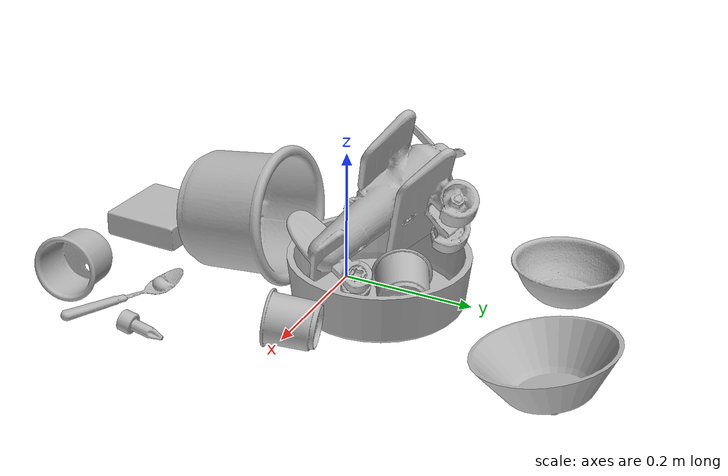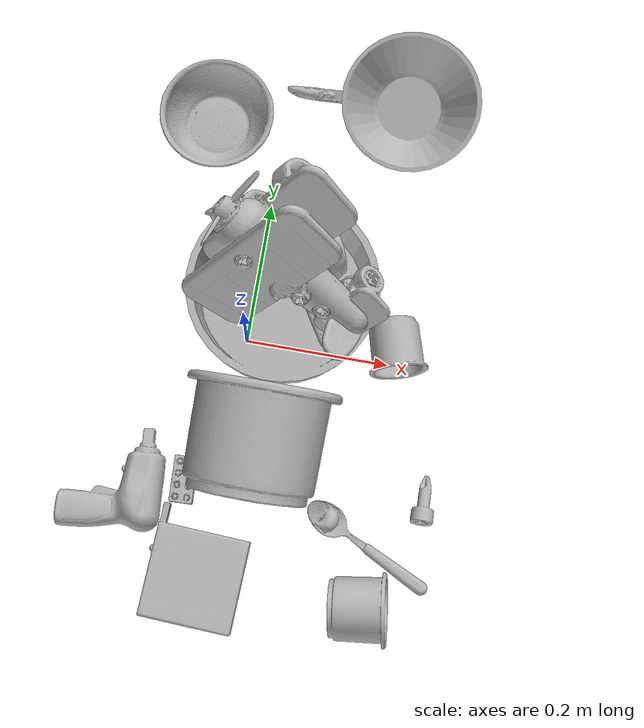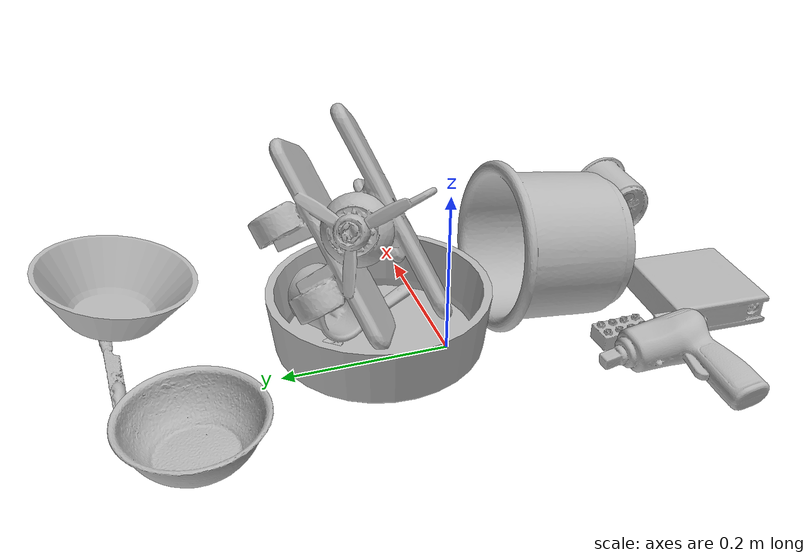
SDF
<sdf version="1.4">
  <world name="default">
    <light name="light1" type="point">
      <pose>0 0 1 0 0 0</pose>
      <diffuse>3 3 3 1</diffuse>
      <specular>3 3 3 1</specular>
    </light>
    <light name="light2" type="point">
      <pose>0 0.5 2 0 0 0</pose>
      <diffuse>1 1 1 1</diffuse>
      <specular>1 1 1 1</specular>
    </light>
    <light name="light3" type="point">
      <pose>0 0.5 2 0 0 0</pose>
      <diffuse>3 3 3 1</diffuse>
      <specular>3 3 3 1</specular>
    </light>
    <scene>
      <ambient>0.7 0.7 0.7</ambient>
    </scene>
    <model name="plate1">
      <link name="link_plate1">
        <collision name="default">
          <geometry>
            <mesh>
              <uri>model://pan_tefal/collision_meshes/collision.obj</uri>
              <scale>1.0 1.0 1.0</scale>
            </mesh>
          </geometry>
          <surface>
            <friction>
              <ode>
                <mu>0.5</mu>
                <mu2>0.5</mu2>
              </ode>
            </friction>
          <contact>
        <ode>
            <max_vel>0</max_vel>
            <min_depth>0.0001</min_depth>
            <kp>1e8</kp>
        </ode>
    </contact></surface>
        </collision>
        <visual name="default">
          <geometry>
            <mesh>
              <uri>model://pan_tefal/visual_meshes/visual.dae</uri>
              <scale>1.0 1.0 1.0</scale>
            </mesh>
          </geometry>
        </visual>
        <inertial>
          <mass>1.2414644956588745</mass>
          <pose>-0.0001800298341549933 3.278589065303095e-05 -0.00851493515074253 0.0008190165640447202 -0.0003301348973125405 -0.33185319573483557</pose>
          <inertia>
            <ixx>0.00856977</ixx>
            <iyy>0.008625018</iyy>
            <izz>0.015775295</izz>
            <ixy>0</ixy>
            <ixz>0</ixz>
            <iyz>0</iyz>
          </inertia>
        </inertial>
      </link>
      <pose>0.03825554996728897 0.07155869901180267 0.038050100207328796 -6.205489685035115e-06 1.3526633974662002e-06 0.6756754665961403</pose>
    </model>
    <model name="cup1">
      <link name="link_cup1">
        <collision name="default">
          <geometry>
            <mesh>
              <uri>model://j_cups/collision_meshes/collision.obj</uri>
              <scale>2.0 2.0 2.0</scale>
            </mesh>
          </geometry>
          <surface>
            <friction>
              <ode>
                <mu>0.5</mu>
                <mu2>0.5</mu2>
              </ode>
            </friction>
          <contact>
        <ode>
            <max_vel>0</max_vel>
            <min_depth>0.0001</min_depth>
            <kp>1e8</kp>
        </ode>
    </contact></surface>
        </collision>
        <visual name="default">
          <geometry>
            <mesh>
              <uri>model://j_cups/visual_meshes/visual.dae</uri>
              <scale>2.0 2.0 2.0</scale>
            </mesh>
          </geometry>
        </visual>
        <inertial>
          <mass>0.42814481258392334</mass>
          <pose>0.0012329709716141224 0.0010797895956784487 -0.002695801667869091 0.030303634199985552 0.037580068488308346 0.43868666904956827</pose>
          <inertia>
            <ixx>0.0025146077</ixx>
            <iyy>0.0025407567</iyy>
            <izz>0.0028988216</izz>
            <ixy>0</ixy>
            <ixz>0</ixz>
            <iyz>0</iyz>
          </inertia>
        </inertial>
      </link>
      <pose>0.039916735142469406 -0.14181670546531677 0.09444397687911987 1.4332651507526406 0.48449081214815287 3.0723422790061945</pose>
    </model>
    <model name="silverware1">
      <link name="link_silverware1">
        <collision name="default">
          <geometry>
            <mesh>
              <uri>model://fork/collision_meshes/collision.obj</uri>
              <scale>1.0 1.0 1.0</scale>
            </mesh>
          </geometry>
          <surface>
            <friction>
              <ode>
                <mu>0.5</mu>
                <mu2>0.5</mu2>
              </ode>
            </friction>
          <contact>
        <ode>
            <max_vel>0</max_vel>
            <min_depth>0.0001</min_depth>
            <kp>1e8</kp>
        </ode>
    </contact></surface>
        </collision>
        <visual name="default">
          <geometry>
            <mesh>
              <uri>model://fork/visual_meshes/visual.dae</uri>
              <scale>1.0 1.0 1.0</scale>
            </mesh>
          </geometry>
        </visual>
        <inertial>
          <mass>0.013809523545205593</mass>
          <pose>-0.029570044949650764 0.0004658822435885668 0.00032188615296036005 -0.013551743215227608 -0.010977837587661193 0.014453899243146438</pose>
          <inertia>
            <ixx>4.84102e-07</ixx>
            <iyy>3.6052697e-05</iyy>
            <izz>3.6269223e-05</izz>
            <ixy>0</ixy>
            <ixz>0</ixz>
            <iyz>0</iyz>
          </inertia>
        </inertial>
      </link>
      <pose>0.060082174837589264 0.0920267254114151 0.01241295225918293 0.018689220334534417 0.04483831284180789 2.1495347574955392</pose>
    </model>
    <model name="silverware2">
      <link name="link_silverware2">
        <collision name="default">
          <geometry>
            <mesh>
              <uri>model://knife/collision_meshes/collision.obj</uri>
              <scale>1.0 1.0 1.0</scale>
            </mesh>
          </geometry>
          <surface>
            <friction>
              <ode>
                <mu>0.5</mu>
                <mu2>0.5</mu2>
              </ode>
            </friction>
          <contact>
        <ode>
            <max_vel>0</max_vel>
            <min_depth>0.0001</min_depth>
            <kp>1e8</kp>
        </ode>
    </contact></surface>
        </collision>
        <visual name="default">
          <geometry>
            <mesh>
              <uri>model://knife/visual_meshes/visual.dae</uri>
              <scale>1.0 1.0 1.0</scale>
            </mesh>
          </geometry>
        </visual>
        <inertial>
          <mass>0.021972408518195152</mass>
          <pose>-0.023785250261425972 0.0015275123296305537 5.0620161346159875e-05 0.07305788583029697 0.01724841890740089 -0.007409824444555058</pose>
          <inertia>
            <ixx>6.2366604e-07</ixx>
            <iyy>8.441444e-05</iyy>
            <izz>8.46153e-05</izz>
            <ixy>0</ixy>
            <ixz>0</ixz>
            <iyz>0</iyz>
          </inertia>
        </inertial>
      </link>
      <pose>0.09943175315856934 0.3821915090084076 0.006071458570659161 2.8120634344927087 0.02100034667318305 -3.0854309104925433</pose>
    </model>
    <model name="silverware3">
      <link name="link_silverware3">
        <collision name="default">
          <geometry>
            <mesh>
              <uri>model://spoon/collision_meshes/collision.obj</uri>
              <scale>1.0 1.0 1.0</scale>
            </mesh>
          </geometry>
          <surface>
            <friction>
              <ode>
                <mu>0.5</mu>
                <mu2>0.5</mu2>
              </ode>
            </friction>
          <contact>
        <ode>
            <max_vel>0</max_vel>
            <min_depth>0.0001</min_depth>
            <kp>1e8</kp>
        </ode>
    </contact></surface>
        </collision>
        <visual name="default">
          <geometry>
            <mesh>
              <uri>model://spoon/visual_meshes/visual.dae</uri>
              <scale>1.0 1.0 1.0</scale>
            </mesh>
          </geometry>
        </visual>
        <inertial>
          <mass>0.026694269850850105</mass>
          <pose>-0.005526325199753046 -0.0016034168656915426 -0.0007271653739735484 0.035216710718480135 -0.03906584501417282 0.00615060951780049</pose>
          <inertia>
            <ixx>1.484779e-06</ixx>
            <iyy>0.000101570804</iyy>
            <izz>0.000102303035</izz>
            <ixy>0</ixy>
            <ixz>0</ixz>
            <iyz>0</iyz>
          </inertia>
        </inertial>
      </link>
      <pose>0.20929908752441406 -0.25501054525375366 0.008385262452065945 0.00672897639221411 0.026893009700383684 2.67513254902952</pose>
    </model>
    <model name="cup3">
      <link name="link_cup3">
        <collision name="default">
          <geometry>
            <mesh>
              <uri>model://f_cups/collision_meshes/collision.obj</uri>
              <scale>1.0 1.0 1.0</scale>
            </mesh>
          </geometry>
          <surface>
            <friction>
              <ode>
                <mu>0.5</mu>
                <mu2>0.5</mu2>
              </ode>
            </friction>
          <contact>
        <ode>
            <max_vel>0</max_vel>
            <min_depth>0.0001</min_depth>
            <kp>1e8</kp>
        </ode>
    </contact></surface>
        </collision>
        <visual name="default">
          <geometry>
            <mesh>
              <uri>model://f_cups/visual_meshes/visual.dae</uri>
              <scale>1.0 1.0 1.0</scale>
            </mesh>
          </geometry>
        </visual>
        <inertial>
          <mass>0.09255705773830414</mass>
          <pose>-0.0031714672222733498 -0.0006240062648430467 -0.0036555363330990076 0.7862294428046025 -0.26079256257201844 -0.18237393521905715</pose>
          <inertia>
            <ixx>8.700612e-05</ixx>
            <iyy>9.127041e-05</iyy>
            <izz>9.501506e-05</izz>
            <ixy>0</ixy>
            <ixz>0</ixz>
            <iyz>0</iyz>
          </inertia>
        </inertial>
      </link>
      <pose>0.2051669806241989 0.02147737890481949 0.03713995963335037 1.4687374775255193 0.01676940052783826 0.259406191709178</pose>
    </model>
    <model name="cup4">
      <link name="link_cup4">
        <collision name="default">
          <geometry>
            <mesh>
              <uri>model://g_cups/collision_meshes/collision.obj</uri>
              <scale>1.0 1.0 1.0</scale>
            </mesh>
          </geometry>
          <surface>
            <friction>
              <ode>
                <mu>0.5</mu>
                <mu2>0.5</mu2>
              </ode>
            </friction>
          <contact>
        <ode>
            <max_vel>0</max_vel>
            <min_depth>0.0001</min_depth>
            <kp>1e8</kp>
        </ode>
    </contact></surface>
        </collision>
        <visual name="default">
          <geometry>
            <mesh>
              <uri>model://g_cups/visual_meshes/visual.dae</uri>
              <scale>1.0 1.0 1.0</scale>
            </mesh>
          </geometry>
        </visual>
        <inertial>
          <mass>0.09045539051294327</mass>
          <pose>-0.0007946272380650043 -4.206356970826164e-05 -0.0021329366136342287 -0.21382427470227655 -0.31410603394020525 0.31120189460551634</pose>
          <inertia>
            <ixx>0.000105581705</ixx>
            <iyy>0.000105222556</iyy>
            <izz>0.000109364446</izz>
            <ixy>0</ixy>
            <ixz>0</ixz>
            <iyz>0</iyz>
          </inertia>
        </inertial>
      </link>
      <pose>0.07247614860534668 0.12419839203357697 0.04839332774281502 -1.2148986201597187 1.1676845011251942 2.3728611568753224</pose>
    </model>
    <model name="cup5">
      <link name="link_cup5">
        <collision name="default">
          <geometry>
            <mesh>
              <uri>model://i_cups/collision_meshes/collision.obj</uri>
              <scale>1.0 1.0 1.0</scale>
            </mesh>
          </geometry>
          <surface>
            <friction>
              <ode>
                <mu>0.5</mu>
                <mu2>0.5</mu2>
              </ode>
            </friction>
          <contact>
        <ode>
            <max_vel>0</max_vel>
            <min_depth>0.0001</min_depth>
            <kp>1e8</kp>
        </ode>
    </contact></surface>
        </collision>
        <visual name="default">
          <geometry>
            <mesh>
              <uri>model://i_cups/visual_meshes/visual.dae</uri>
              <scale>1.0 1.0 1.0</scale>
            </mesh>
          </geometry>
        </visual>
        <inertial>
          <mass>0.0815454050898552</mass>
          <pose>0.0001123997790273279 0.00016797320859041065 -0.0008579009445384145 -0.02898318353055437 -0.03987301779891007 -0.3459082462056558</pose>
          <inertia>
            <ixx>0.0001129008</ixx>
            <iyy>0.000113895556</iyy>
            <izz>0.00012618494</izz>
            <ixy>0</ixy>
            <ixz>0</ixz>
            <iyz>0</iyz>
          </inertia>
        </inertial>
      </link>
      <pose>0.20893360674381256 -0.3341276943683624 0.04480120912194252 -0.7353264348635475 1.394229436297043 -0.6058401417742497</pose>
    </model>
    <model name="bowl1">
      <link name="link_bowl1">
        <collision name="default">
          <geometry>
            <mesh>
              <uri>model://bowl/collision_meshes/collision.obj</uri>
              <scale>1.0 1.0 1.0</scale>
            </mesh>
          </geometry>
          <surface>
            <friction>
              <ode>
                <mu>0.5</mu>
                <mu2>0.5</mu2>
              </ode>
            </friction>
          <contact>
        <ode>
            <max_vel>0</max_vel>
            <min_depth>0.0001</min_depth>
            <kp>1e8</kp>
        </ode>
    </contact></surface>
        </collision>
        <visual name="default">
          <geometry>
            <mesh>
              <uri>model://bowl/visual_meshes/visual.dae</uri>
              <scale>1.0 1.0 1.0</scale>
            </mesh>
          </geometry>
        </visual>
        <inertial>
          <mass>0.1349102407693863</mass>
          <pose>0.00020445192058105022 -0.0010302069131284952 -0.0008042648551054299 -0.01576408127006171 0.01454679335072616 0.7140405111038781</pose>
          <inertia>
            <ixx>0.00030989948</ixx>
            <iyy>0.00030297515</iyy>
            <izz>0.0005213576</izz>
            <ixy>0</ixy>
            <ixz>0</ixz>
            <iyz>0</iyz>
          </inertia>
        </inertial>
      </link>
      <pose>-0.09771979600191116 0.3068356215953827 0.02778000757098198 2.321976235019508e-08 -1.0133615432334253e-08 2.0806030906536024</pose>
    </model>
    <model name="bowl2">
      <link name="link_bowl2">
        <collision name="default">
          <geometry>
            <mesh>
              <uri>model://bowl_a/collision_meshes/collision.obj</uri>
              <scale>1.0 1.0 1.0</scale>
            </mesh>
          </geometry>
          <surface>
            <friction>
              <ode>
                <mu>0.5</mu>
                <mu2>0.5</mu2>
              </ode>
            </friction>
          <contact>
        <ode>
            <max_vel>0</max_vel>
            <min_depth>0.0001</min_depth>
            <kp>1e8</kp>
        </ode>
    </contact></surface>
        </collision>
        <visual name="default">
          <geometry>
            <mesh>
              <uri>model://bowl_a/visual_meshes/visual.dae</uri>
              <scale>1.0 1.0 1.0</scale>
            </mesh>
          </geometry>
        </visual>
        <inertial>
          <mass>0.4816342294216156</mass>
          <pose>0.000278677063761279 4.73155923828017e-05 -0.0013765296898782253 -0.0009805427744981278 -0.0010938171301827632 -0.19123023792191385</pose>
          <inertia>
            <ixx>0.0013712347</ixx>
            <iyy>0.0013796532</iyy>
            <izz>0.0024387941</izz>
            <ixy>0</ixy>
            <ixz>0</ixz>
            <iyz>0</iyz>
          </inertia>
        </inertial>
      </link>
      <pose>0.17093373835086823 0.36925825476646423 0.041486386209726334 0.20824695771640958 0.04151907523466804 -0.2891644209258299</pose>
    </model>
    <model name="toy1">
      <link name="link_toy1">
        <collision name="default">
          <geometry>
            <mesh>
              <uri>model://a_toy_airplane/collision_meshes/collision.obj</uri>
              <scale>1.0 1.0 1.0</scale>
            </mesh>
          </geometry>
          <surface>
            <friction>
              <ode>
                <mu>0.5</mu>
                <mu2>0.5</mu2>
              </ode>
            </friction>
          <contact>
        <ode>
            <max_vel>0</max_vel>
            <min_depth>0.0001</min_depth>
            <kp>1e8</kp>
        </ode>
    </contact></surface>
        </collision>
        <visual name="default">
          <geometry>
            <mesh>
              <uri>model://a_toy_airplane/visual_meshes/visual.dae</uri>
              <scale>1.0 1.0 1.0</scale>
            </mesh>
          </geometry>
        </visual>
        <inertial>
          <mass>1.6936675310134888</mass>
          <pose>0.025165095925331116 -0.0037073225248605013 -0.0011962444987148046 -0.01201699252327453 -0.146634996228158 0.004149091382990828</pose>
          <inertia>
            <ixx>0.0061505185</ixx>
            <iyy>0.008962553</iyy>
            <izz>0.010494047</izz>
            <ixy>0</ixy>
            <ixz>0</ixz>
            <iyz>0</iyz>
          </inertia>
        </inertial>
      </link>
      <pose>0.04953637719154358 0.07746343314647675 0.14881102740764618 -0.9596287796263295 -0.3220294899665501 2.5170146144212904</pose>
    </model>
    <model name="toy2">
      <link name="link_toy2">
        <collision name="default">
          <geometry>
            <mesh>
              <uri>model://c_lego_duplo/collision_meshes/collision.obj</uri>
              <scale>1.0 1.0 1.0</scale>
            </mesh>
          </geometry>
          <surface>
            <friction>
              <ode>
                <mu>0.5</mu>
                <mu2>0.5</mu2>
              </ode>
            </friction>
          <contact>
        <ode>
            <max_vel>0</max_vel>
            <min_depth>0.0001</min_depth>
            <kp>1e8</kp>
        </ode>
    </contact></surface>
        </collision>
        <visual name="default">
          <geometry>
            <mesh>
              <uri>model://c_lego_duplo/visual_meshes/visual.dae</uri>
              <scale>1.0 1.0 1.0</scale>
            </mesh>
          </geometry>
        </visual>
        <inertial>
          <mass>0.01636073924601078</mass>
          <pose>0.000316459103487432 0.0001946457487065345 0.001045315177179873 -0.01152079658800189 0.005900071110555828 0.03110036538654021</pose>
          <inertia>
            <ixx>6.295917e-06</ixx>
            <iyy>2.0111436e-06</iyy>
            <izz>7.357428e-06</izz>
            <ixy>0</ixy>
            <ixz>0</ixz>
            <iyz>0</iyz>
          </inertia>
        </inertial>
      </link>
      <pose>-0.05043145269155502 -0.20573890209197998 0.011981507763266563 0.008016025973550112 -0.002096261050767346 0.01690778219447512</pose>
    </model>
    <model name="toy3">
      <link name="link_toy3">
        <collision name="default">
          <geometry>
            <mesh>
              <uri>model://nine_hole_peg_test/collision_meshes/collision.obj</uri>
              <scale>1.0 1.0 1.0</scale>
            </mesh>
          </geometry>
          <surface>
            <friction>
              <ode>
                <mu>0.5</mu>
                <mu2>0.5</mu2>
              </ode>
            </friction>
          <contact>
        <ode>
            <max_vel>0</max_vel>
            <min_depth>0.0001</min_depth>
            <kp>1e8</kp>
        </ode>
    </contact></surface>
        </collision>
        <visual name="default">
          <geometry>
            <mesh>
              <uri>model://nine_hole_peg_test/visual_meshes/visual.dae</uri>
              <scale>1.0 1.0 1.0</scale>
            </mesh>
          </geometry>
        </visual>
        <inertial>
          <mass>0.9464474320411682</mass>
          <pose>-0.004617386497557163 -0.009647613391280174 2.646068787726108e-05 -0.0014666793204268175 0.0007194166079670136 -0.6342420609245715</pose>
          <inertia>
            <ixx>0.0014799263</ixx>
            <iyy>0.0013817915</iyy>
            <izz>0.002593267</izz>
            <ixy>0</ixy>
            <ixz>0</ixz>
            <iyz>0</iyz>
          </inertia>
        </inertial>
      </link>
      <pose>-0.015517283231019974 -0.3217814266681671 0.02079102024435997 3.141592641634622 7.524312934936298e-09 3.090211954764923</pose>
    </model>
    <model name="toy4">
      <link name="link_toy4">
        <collision name="default">
          <geometry>
            <mesh>
              <uri>model://d_toy_airplane/collision_meshes/collision.obj</uri>
              <scale>1.0 1.0 1.0</scale>
            </mesh>
          </geometry>
          <surface>
            <friction>
              <ode>
                <mu>0.5</mu>
                <mu2>0.5</mu2>
              </ode>
            </friction>
          <contact>
        <ode>
            <max_vel>0</max_vel>
            <min_depth>0.0001</min_depth>
            <kp>1e8</kp>
        </ode>
    </contact></surface>
        </collision>
        <visual name="default">
          <geometry>
            <mesh>
              <uri>model://d_toy_airplane/visual_meshes/visual.dae</uri>
              <scale>1.0 1.0 1.0</scale>
            </mesh>
          </geometry>
        </visual>
        <inertial>
          <mass>0.021776849403977394</mass>
          <pose>9.410295024281368e-05 -5.809321373817511e-05 -0.011728097684681416 0.0002661671660100631 0.004679022103859929 0.519291232465637</pose>
          <inertia>
            <ixx>6.5282748e-06</ixx>
            <iyy>6.5331997e-06</iyy>
            <izz>1.9709291e-06</izz>
            <ixy>0</ixy>
            <ixz>0</ixz>
            <iyz>0</iyz>
          </inertia>
        </inertial>
      </link>
      <pose>0.277272492647171 -0.17558223009109497 0.011460741981863976 1.923662152490163 -0.9526337044786191 2.846617383633862</pose>
    </model>
    <model name="toy5">
      <link name="link_toy5">
        <collision name="default">
          <geometry>
            <mesh>
              <uri>model://b_toy_airplane/collision_meshes/collision.obj</uri>
              <scale>1.0 1.0 1.0</scale>
            </mesh>
          </geometry>
          <surface>
            <friction>
              <ode>
                <mu>0.5</mu>
                <mu2>0.5</mu2>
              </ode>
            </friction>
          <contact>
        <ode>
            <max_vel>0</max_vel>
            <min_depth>0.0001</min_depth>
            <kp>1e8</kp>
        </ode>
    </contact></surface>
        </collision>
        <visual name="default">
          <geometry>
            <mesh>
              <uri>model://b_toy_airplane/visual_meshes/visual.dae</uri>
              <scale>1.0 1.0 1.0</scale>
            </mesh>
          </geometry>
        </visual>
        <inertial>
          <mass>0.25237053632736206</mass>
          <pose>0.00508136348798871 0.004015584476292133 0.00954306498169899 -0.04001808288480986 -0.0402218063825515 -0.5601503558886168</pose>
          <inertia>
            <ixx>0.00046853055</ixx>
            <iyy>0.00018727628</iyy>
            <izz>0.0005828988</izz>
            <ixy>0</ixy>
            <ixz>0</ixz>
            <iyz>0</iyz>
          </inertia>
        </inertial>
      </link>
      <pose>-0.12835881114006042 -0.2445003092288971 0.03568907827138901 3.069570936553083 0.07405941132072835 1.6560962561894517</pose>
    </model>
  <physics type="ode">
      <max_contacts>50</max_contacts>
      <ode>
        <solver>
          <type>quick</type>
          <iters>75</iters>
        </solver>
        <constraints>
          <contact_max_correcting_vel>0</contact_max_correcting_vel>
          <contact_surface_layer>0</contact_surface_layer>
        </constraints>
      </ode>
    </physics></world>
</sdf>
